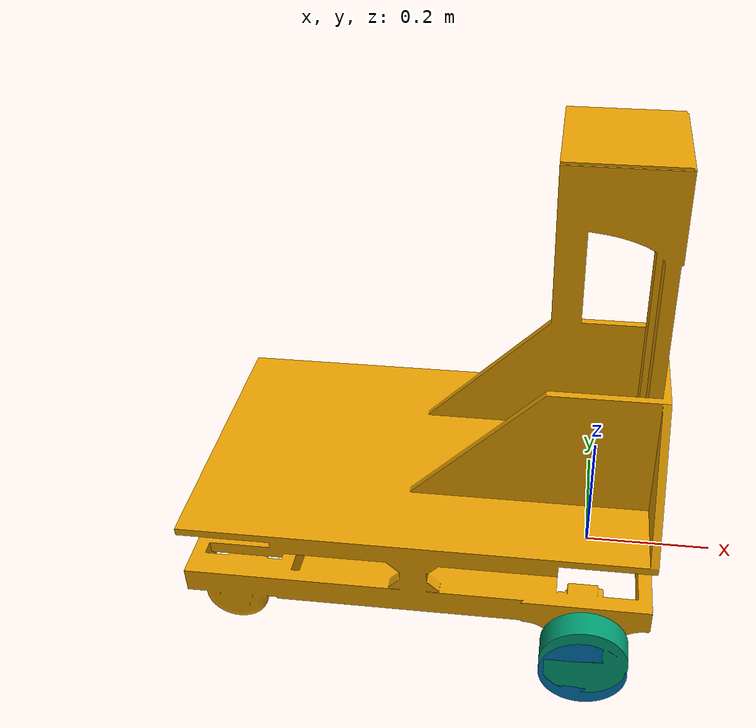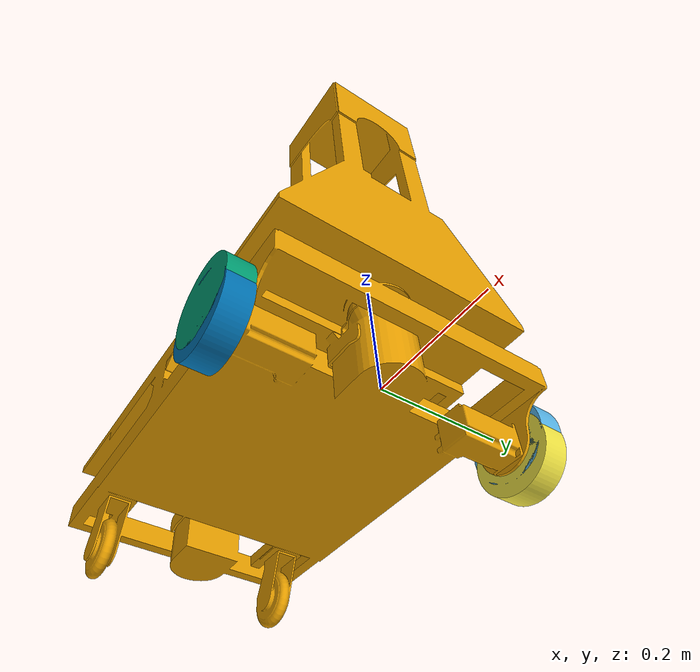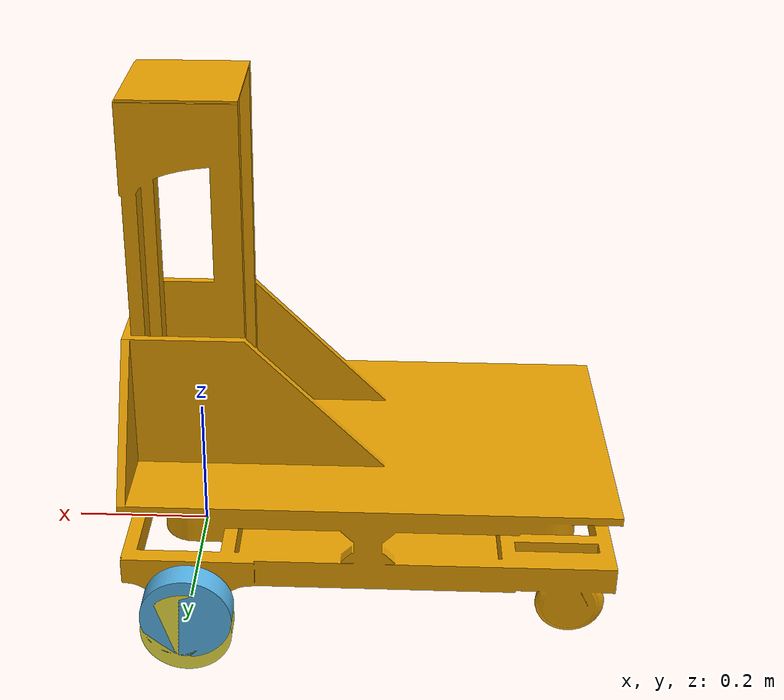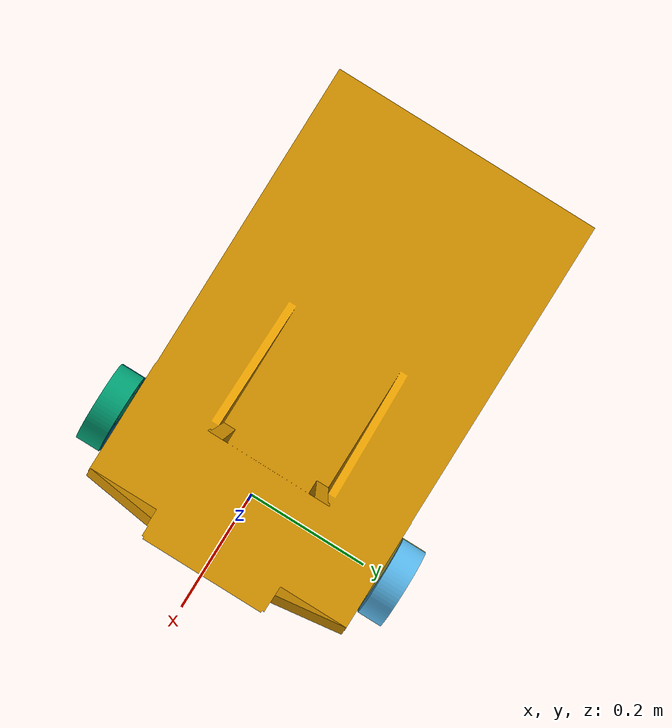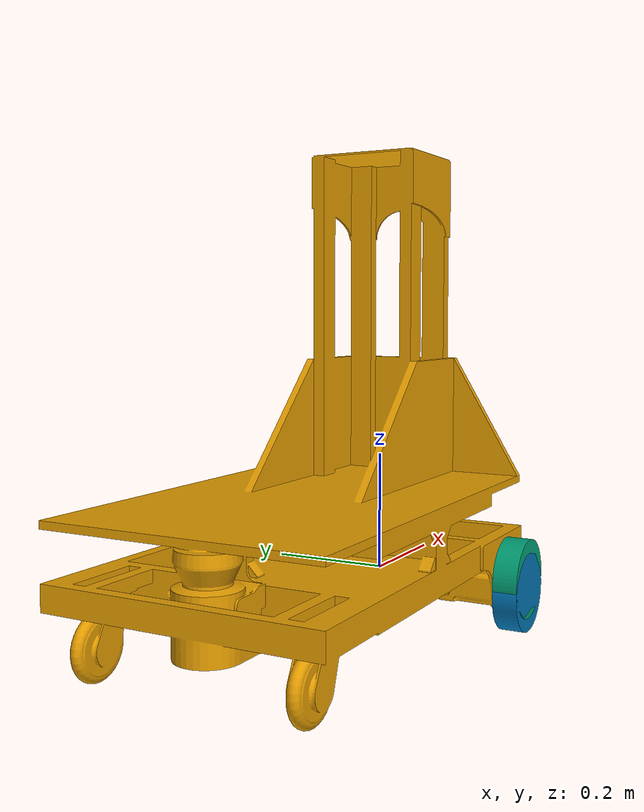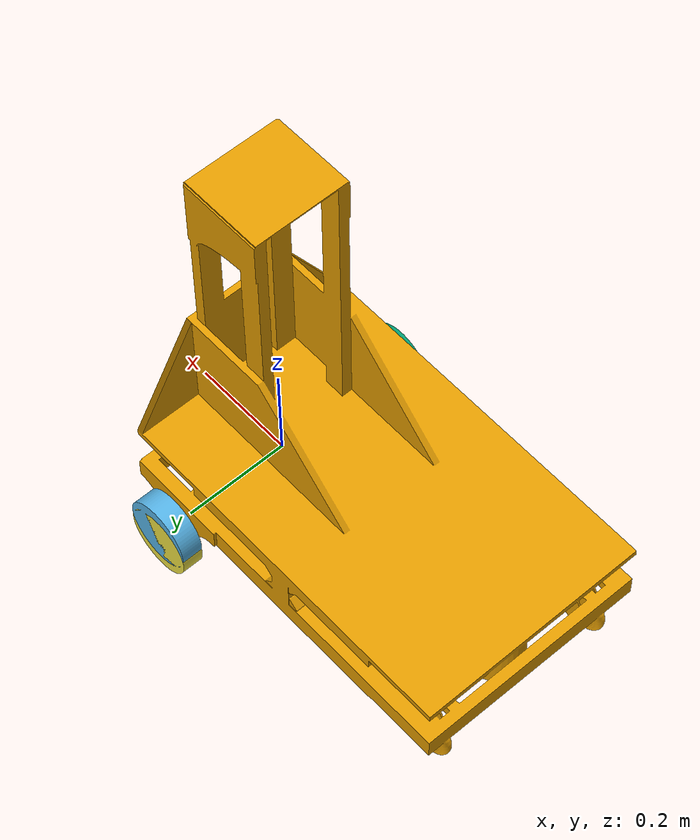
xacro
<?xml version="1.0"?>
<robot xmlns:xacro="http://www.ros.org/wiki/xacro"
       name="cpr_platform_mini" >

  <!-- Controller settings -->
  <xacro:arg name="hardware_protocol" default="cri"/>

  <xacro:arg name="prefix" default="" />

  <xacro:include filename="$(find irc_ros_description)/urdf/platforms/cpr_platform_mini.macro.xacro" />
  <xacro:cpr_platform_mini prefix="$(arg prefix)" hardware_protocol="$(arg hardware_protocol)" />

</robot>

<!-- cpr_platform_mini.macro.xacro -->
<robot xmlns:xacro="http://www.ros.org/wiki/xacro"
       name="cpr_platform_mini" >

  <!-- Include relevant macros -->
  <xacro:include filename="$(find irc_ros_description)/urdf/platforms/cpr_platform_mini.description.xacro" />
  <xacro:include filename="$(find irc_ros_description)/urdf/platforms/cpr_platform_mini.ros2_control.xacro" />

  <xacro:macro name="cpr_platform_mini" params="prefix hardware_protocol">
    <!-- Call macros once -->
    <xacro:cpr_platform_mini_description prefix="${prefix}"/>
    <xacro:cpr_platform_mini_ros2_control prefix="${prefix}" hardware_protocol="${hardware_protocol}" />
  </xacro:macro>
</robot>

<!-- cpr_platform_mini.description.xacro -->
<robot xmlns:xacro="http://www.ros.org/wiki/xacro"
       name="cpr_platform_mini" >

  <xacro:macro name="cpr_platform_mini_description" params="prefix">
    <xacro:property name="base_height" value="0.05"/>
    <xacro:property name="wheel_radius" value="0.07308"/>

    <link name="${prefix}base_link">
      <visual>
        <geometry>
          <mesh filename="file://$(find irc_ros_description)/meshes/cpr_platform_medium/body.dae"/>
        </geometry>
        <origin rpy="0 0 3.14" xyz="0 0 0"/>
      </visual>
      <collision>
        <geometry>
          <mesh filename="file://$(find irc_ros_description)/meshes/cpr_platform_medium/bodyColl.dae"/>
        </geometry>
        <origin rpy="0 0 ${pi}" xyz="0 0 0"/>
      </collision>
      <inertial>
        <mass value="1.0"/>
        <inertia ixx="1.0" ixy="0.0" ixz="0.0" iyy="1.0" iyz="0.0" izz="1.0"/>
      </inertial>
    </link>

    <joint name="${prefix}joint_wheel_1" type="continuous">
      <parent link="${prefix}base_link"/>
      <child link="${prefix}wheel_1"/>
      <origin rpy="0.0 0.0 0.0" xyz="0.0 0.25 0.011"/>
      <axis xyz="0 -1 0"/>
    </joint>
    <link name="${prefix}wheel_1">
      <visual>
        <geometry>
          <mesh filename="file://$(find irc_ros_description)/meshes/cpr_platform_medium/wheel.dae"/>
        </geometry>
      </visual>
      <collision>
        <geometry>
          <mesh filename="file://$(find irc_ros_description)/meshes/cpr_platform_medium/wheelColl.dae"/>
        </geometry>
      </collision>
      <inertial>
        <mass value="0.1"/>
        <inertia ixx="0.03" ixy="0.0" ixz="0.0" iyy="0.03" iyz="0.0" izz="0.03"/>
      </inertial>
    </link>

    <joint name="${prefix}joint_wheel_2" type="continuous">
      <parent link="${prefix}base_link"/>
      <child link="${prefix}wheel_2"/>
      <origin rpy="0.0 0.0 0.0" xyz="0.0 -0.25 0.011"/>
      <axis xyz="0 -1 0"/>
    </joint>
    <link name="${prefix}wheel_2">
      <visual>
        <geometry>
          <mesh filename="file://$(find irc_ros_description)/meshes/cpr_platform_medium/wheel.dae"/>
        </geometry>
      </visual>
      <collision>
        <geometry>
          <mesh filename="file://$(find irc_ros_description)/meshes/cpr_platform_medium/wheelColl.dae"/>
        </geometry>
      </collision>
      <inertial>
        <mass value="0.1"/>
        <inertia ixx="0.03" ixy="0.0" ixz="0.0" iyy="0.03" iyz="0.0" izz="0.03"/>
      </inertial>
    </link>

    <joint name="${prefix}joint_wheel_3" type="continuous">
      <parent link="${prefix}base_link"/>
      <child link="${prefix}wheel_3"/>
      <origin rpy="0.0 0.0 0.0" xyz="0.0 0.25 -0.011"/>
      <axis xyz="0 -1 0"/>
    </joint>
    <link name="${prefix}wheel_3">
      <visual>
        <geometry>
          <mesh filename="file://$(find irc_ros_description)/meshes/cpr_platform_medium/wheel.dae"/>
        </geometry>
      </visual>
      <collision>
        <geometry>
          <mesh filename="file://$(find irc_ros_description)/meshes/cpr_platform_medium/wheelColl.dae"/>
        </geometry>
      </collision>
      <inertial>
        <mass value="0.1"/>
        <inertia ixx="0.03" ixy="0.0" ixz="0.0" iyy="0.03" iyz="0.0" izz="0.03"/>
      </inertial>
    </link>

    <joint name="${prefix}joint_wheel_4" type="continuous">
      <parent link="${prefix}base_link"/>
      <child link="${prefix}wheel_4"/>
      <origin rpy="0.0 0.0 0.0" xyz="0.0 -0.25 -0.011"/>
      <axis xyz="0 -1 0"/>
    </joint>
    <link name="${prefix}wheel_4">
      <visual>
        <geometry>
          <mesh filename="file://$(find irc_ros_description)/meshes/cpr_platform_medium/wheel.dae"/>
        </geometry>
      </visual>
      <collision>
        <geometry>
          <mesh filename="file://$(find irc_ros_description)/meshes/cpr_platform_medium/wheelColl.dae"/>
        </geometry>
      </collision>
      <inertial>
        <mass value="0.1"/>
        <inertia ixx="0.03" ixy="0.0" ixz="0.0" iyy="0.03" iyz="0.0" izz="0.03"/>
      </inertial>
    </link>

    <joint name="${prefix}joint_laser_front" type="fixed">
      <parent link="${prefix}base_link"/>
      <child link="${prefix}laser_front"/>
      <origin rpy="0.0 0.0 0.0" xyz="0.0 0 0"/>
    </joint>
    <link name="${prefix}laser_front">
    </link>

    <joint name="${prefix}joint_laser_back" type="fixed">
      <parent link="${prefix}base_link"/>
      <child link="${prefix}laser_back"/>
      <origin rpy="0.0 0.0 ${pi}" xyz="-0.54 0 0"/>
    </joint>
    <link name="${prefix}laser_back">
    </link>

  </xacro:macro>
</robot>
